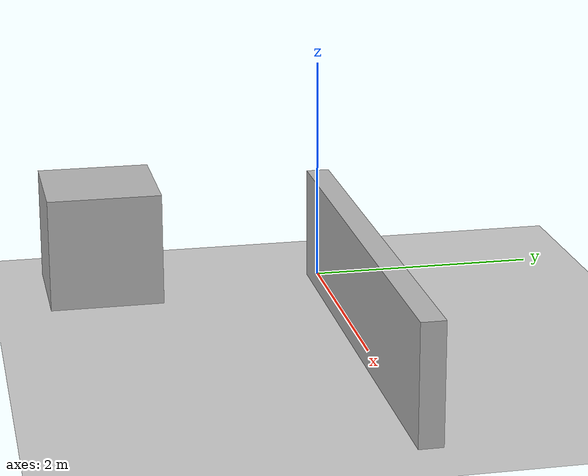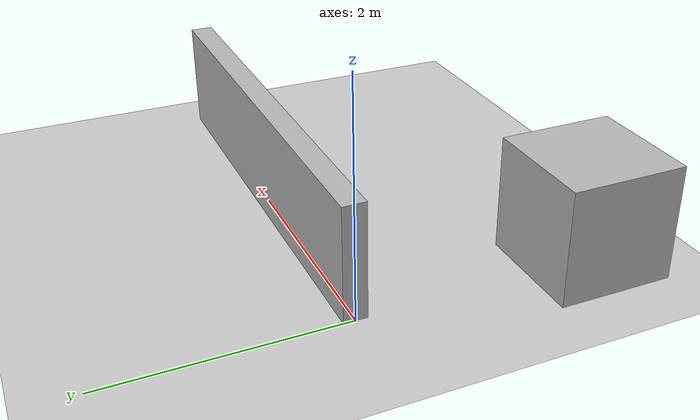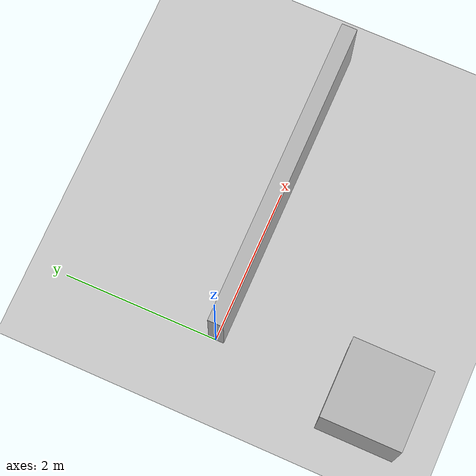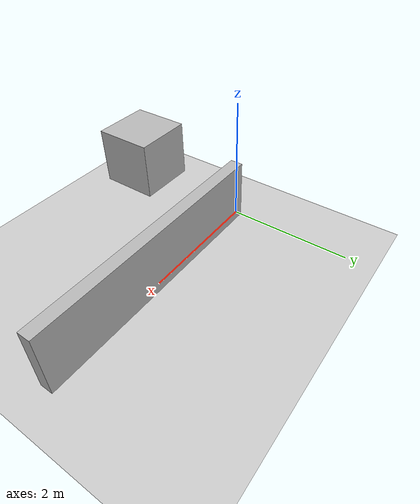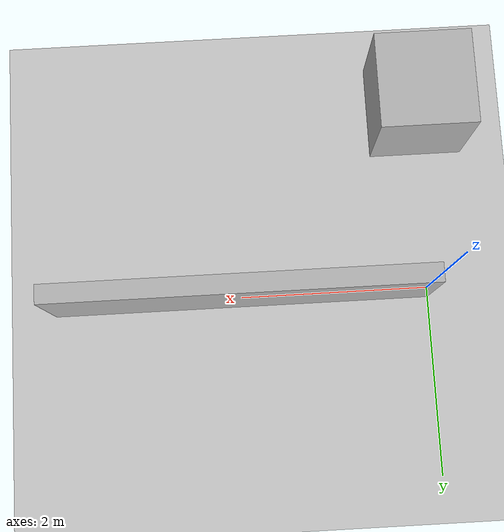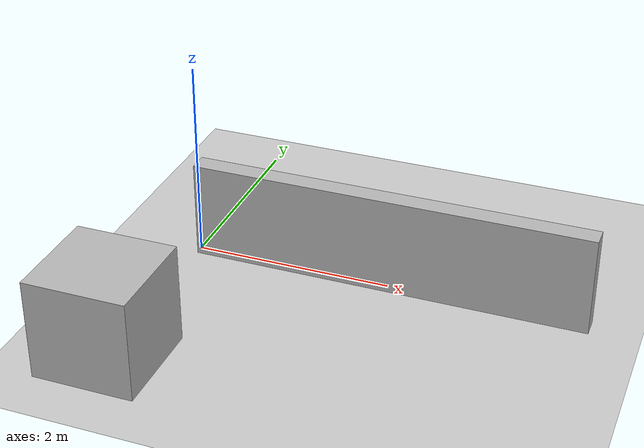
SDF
<?xml version="1.0"?>
<sdf version="1.9"><world name="go2_world"><physics name="1ms" type="ignored"><max_step_size>0.001</max_step_size><real_time_factor>1.0</real_time_factor></physics><plugin filename="gz-sim-physics-system" name="gz::sim::systems::Physics"/><plugin filename="gz-sim-user-commands-system" name="gz::sim::systems::UserCommands"/><plugin filename="gz-sim-scene-broadcaster-system" name="gz::sim::systems::SceneBroadcaster"/><plugin filename="gz-sim-sensors-system" name="gz::sim::systems::Sensors"><render_engine>ogre2</render_engine></plugin><model name="ground_plane"><static>true</static><link name="link"><collision name="collision"><geometry><plane><normal>0 0 1</normal><size>100 100</size></plane></geometry></collision><visual name="visual"><geometry><plane><normal>0 0 1</normal><size>100 100</size></plane></geometry></visual></link></model><model name="test_wall"><static>true</static><pose>2 0 0.5 0 0 0</pose><link name="link"><collision name="collision"><geometry><box><size>4 0.2 1</size></box></geometry></collision><visual name="visual"><geometry><box><size>4 0.2 1</size></box></geometry></visual></link></model><model name="test_box"><static>true</static><pose>0 -2 0.5 0 0 0</pose><link name="link"><collision name="collision"><geometry><box><size>1 1 1</size></box></geometry></collision><visual name="visual"><geometry><box><size>1 1 1</size></box></geometry></visual></link></model></world></sdf>
